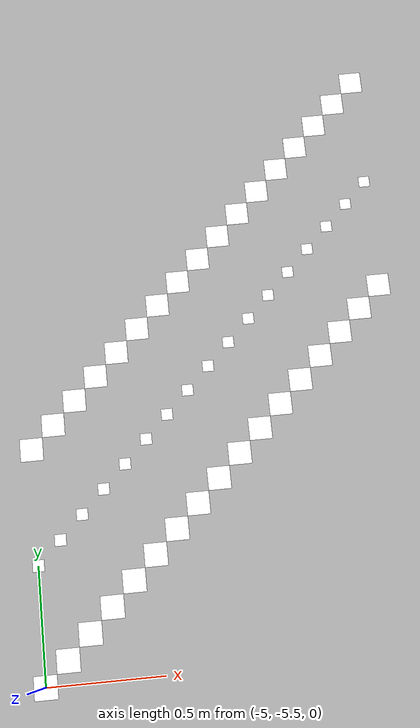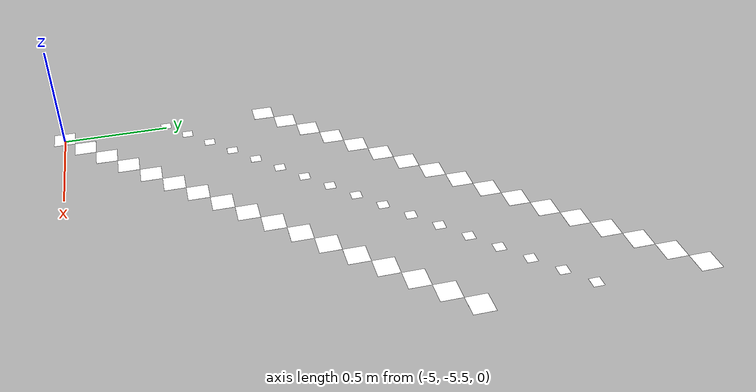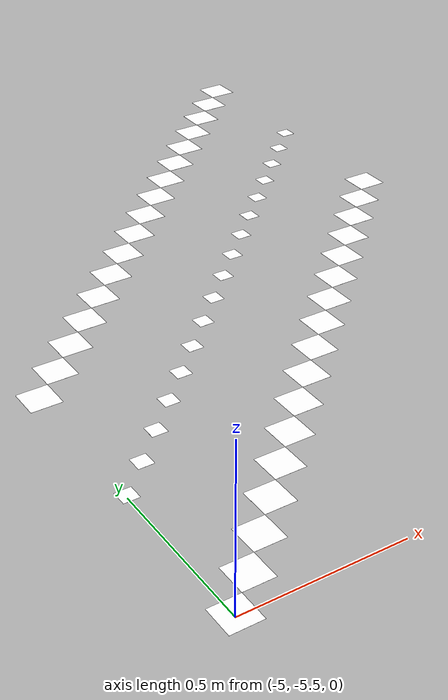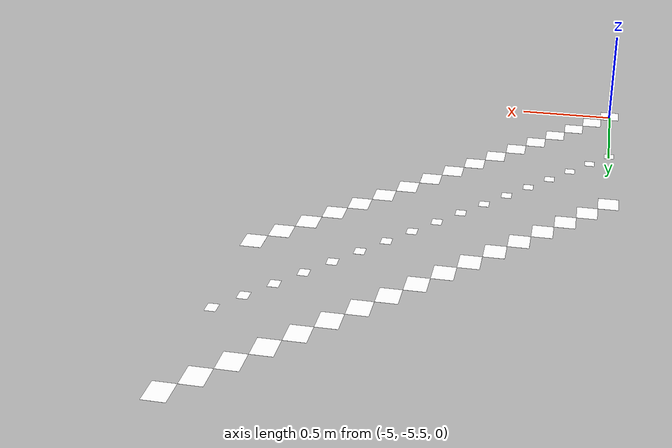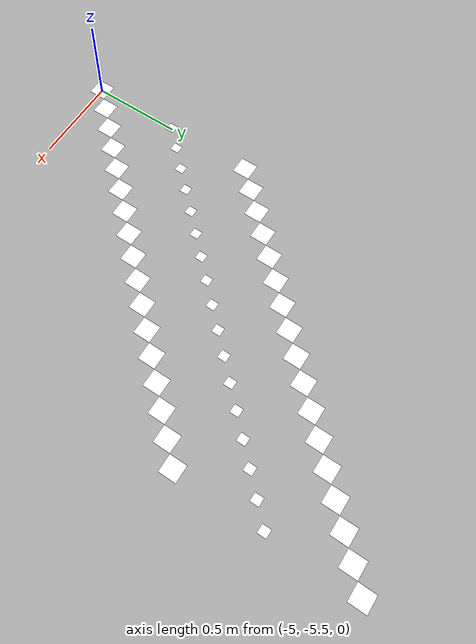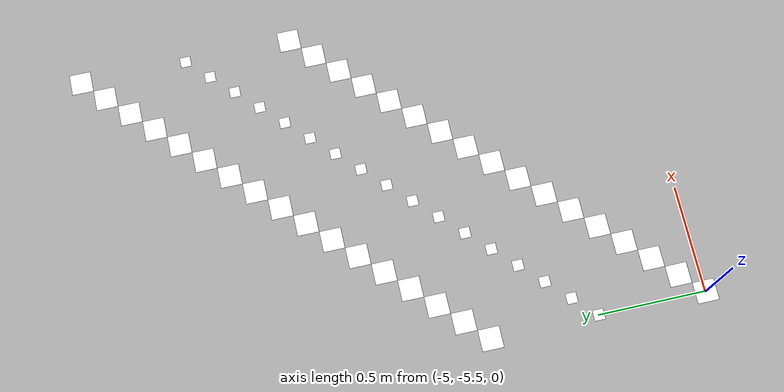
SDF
<sdf version="1.5">
 <model name="AutoNOMOS_mini_intersection">
  <static>true</static>
  <link name="L1_p1">
   <pose>-5 -5 0.011 0 0 0</pose>
   <visual name="visual_L1_p1">
    <cast_shadows>false</cast_shadows>
    <geometry><plane><normal>0 0 1</normal><size>.05 .05</size></plane></geometry>
    <material>
     <ambient>0 0 0 0</ambient>
     <diffuse>1 1 1 0</diffuse>
     <specular>0 0 0 0</specular>
     <emissive>0 0 0 0</emissive>
    </material>
   </visual>
  </link>
  <link name="L1_p-5">
   <pose>-5 -4.5 0.011 0 0 0</pose>
   <visual name="visual_L1_p-5">
    <cast_shadows>false</cast_shadows>
    <geometry><plane><normal>0 0 1</normal><size>.1 .1</size></plane></geometry>
    <material>
     <ambient>0 0 0 0</ambient>
     <diffuse>1 1 1 0</diffuse>
     <specular>0 0 0 0</specular>
     <emissive>0 0 0 0</emissive>
    </material>
   </visual>
  </link>
  <link name="L1_p-4.5">
   <pose>-5 -5.5 0.011 0 0 0</pose>
   <visual name="visual_L1_p-4.5">
    <cast_shadows>false</cast_shadows>
    <geometry><plane><normal>0 0 1</normal><size>.1 .1</size></plane></geometry>
    <material>
     <ambient>0 0 0 0</ambient>
     <diffuse>1 1 1 0</diffuse>
     <specular>0 0 0 0</specular>
     <emissive>0 0 0 0</emissive>
    </material>
   </visual>
  </link>
  <link name="L1_p2">
   <pose>-4.9 -4.9 0.011 0 0 0</pose>
   <visual name="visual_L1_p2">
    <cast_shadows>false</cast_shadows>
    <geometry><plane><normal>0 0 1</normal><size>.05 .05</size></plane></geometry>
    <material>
     <ambient>0 0 0 0</ambient>
     <diffuse>1 1 1 0</diffuse>
     <specular>0 0 0 0</specular>
     <emissive>0 0 0 0</emissive>
    </material>
   </visual>
  </link>
  <link name="L1_p-4.9">
   <pose>-4.9 -4.4 0.011 0 0 0</pose>
   <visual name="visual_L1_p-4.9">
    <cast_shadows>false</cast_shadows>
    <geometry><plane><normal>0 0 1</normal><size>.1 .1</size></plane></geometry>
    <material>
     <ambient>0 0 0 0</ambient>
     <diffuse>1 1 1 0</diffuse>
     <specular>0 0 0 0</specular>
     <emissive>0 0 0 0</emissive>
    </material>
   </visual>
  </link>
  <link name="L1_p-4.4">
   <pose>-4.9 -5.4 0.011 0 0 0</pose>
   <visual name="visual_L1_p-4.4">
    <cast_shadows>false</cast_shadows>
    <geometry><plane><normal>0 0 1</normal><size>.1 .1</size></plane></geometry>
    <material>
     <ambient>0 0 0 0</ambient>
     <diffuse>1 1 1 0</diffuse>
     <specular>0 0 0 0</specular>
     <emissive>0 0 0 0</emissive>
    </material>
   </visual>
  </link>
  <link name="L1_p3">
   <pose>-4.8 -4.8 0.011 0 0 0</pose>
   <visual name="visual_L1_p3">
    <cast_shadows>false</cast_shadows>
    <geometry><plane><normal>0 0 1</normal><size>.05 .05</size></plane></geometry>
    <material>
     <ambient>0 0 0 0</ambient>
     <diffuse>1 1 1 0</diffuse>
     <specular>0 0 0 0</specular>
     <emissive>0 0 0 0</emissive>
    </material>
   </visual>
  </link>
  <link name="L1_p-4.8">
   <pose>-4.8 -4.3 0.011 0 0 0</pose>
   <visual name="visual_L1_p-4.8">
    <cast_shadows>false</cast_shadows>
    <geometry><plane><normal>0 0 1</normal><size>.1 .1</size></plane></geometry>
    <material>
     <ambient>0 0 0 0</ambient>
     <diffuse>1 1 1 0</diffuse>
     <specular>0 0 0 0</specular>
     <emissive>0 0 0 0</emissive>
    </material>
   </visual>
  </link>
  <link name="L1_p-4.3">
   <pose>-4.8 -5.3 0.011 0 0 0</pose>
   <visual name="visual_L1_p-4.3">
    <cast_shadows>false</cast_shadows>
    <geometry><plane><normal>0 0 1</normal><size>.1 .1</size></plane></geometry>
    <material>
     <ambient>0 0 0 0</ambient>
     <diffuse>1 1 1 0</diffuse>
     <specular>0 0 0 0</specular>
     <emissive>0 0 0 0</emissive>
    </material>
   </visual>
  </link>
  <link name="L1_p4">
   <pose>-4.7 -4.7 0.011 0 0 0</pose>
   <visual name="visual_L1_p4">
    <cast_shadows>false</cast_shadows>
    <geometry><plane><normal>0 0 1</normal><size>.05 .05</size></plane></geometry>
    <material>
     <ambient>0 0 0 0</ambient>
     <diffuse>1 1 1 0</diffuse>
     <specular>0 0 0 0</specular>
     <emissive>0 0 0 0</emissive>
    </material>
   </visual>
  </link>
  <link name="L1_p-4.7">
   <pose>-4.7 -4.2 0.011 0 0 0</pose>
   <visual name="visual_L1_p-4.7">
    <cast_shadows>false</cast_shadows>
    <geometry><plane><normal>0 0 1</normal><size>.1 .1</size></plane></geometry>
    <material>
     <ambient>0 0 0 0</ambient>
     <diffuse>1 1 1 0</diffuse>
     <specular>0 0 0 0</specular>
     <emissive>0 0 0 0</emissive>
    </material>
   </visual>
  </link>
  <link name="L1_p-4.2">
   <pose>-4.7 -5.2 0.011 0 0 0</pose>
   <visual name="visual_L1_p-4.2">
    <cast_shadows>false</cast_shadows>
    <geometry><plane><normal>0 0 1</normal><size>.1 .1</size></plane></geometry>
    <material>
     <ambient>0 0 0 0</ambient>
     <diffuse>1 1 1 0</diffuse>
     <specular>0 0 0 0</specular>
     <emissive>0 0 0 0</emissive>
    </material>
   </visual>
  </link>
  <link name="L1_p5">
   <pose>-4.6 -4.6 0.011 0 0 0</pose>
   <visual name="visual_L1_p5">
    <cast_shadows>false</cast_shadows>
    <geometry><plane><normal>0 0 1</normal><size>.05 .05</size></plane></geometry>
    <material>
     <ambient>0 0 0 0</ambient>
     <diffuse>1 1 1 0</diffuse>
     <specular>0 0 0 0</specular>
     <emissive>0 0 0 0</emissive>
    </material>
   </visual>
  </link>
  <link name="L1_p-4.6">
   <pose>-4.6 -4.1 0.011 0 0 0</pose>
   <visual name="visual_L1_p-4.6">
    <cast_shadows>false</cast_shadows>
    <geometry><plane><normal>0 0 1</normal><size>.1 .1</size></plane></geometry>
    <material>
     <ambient>0 0 0 0</ambient>
     <diffuse>1 1 1 0</diffuse>
     <specular>0 0 0 0</specular>
     <emissive>0 0 0 0</emissive>
    </material>
   </visual>
  </link>
  <link name="L1_p-4.1">
   <pose>-4.6 -5.1 0.011 0 0 0</pose>
   <visual name="visual_L1_p-4.1">
    <cast_shadows>false</cast_shadows>
    <geometry><plane><normal>0 0 1</normal><size>.1 .1</size></plane></geometry>
    <material>
     <ambient>0 0 0 0</ambient>
     <diffuse>1 1 1 0</diffuse>
     <specular>0 0 0 0</specular>
     <emissive>0 0 0 0</emissive>
    </material>
   </visual>
  </link>
  <link name="L1_p6">
   <pose>-4.5 -4.5 0.011 0 0 0</pose>
   <visual name="visual_L1_p6">
    <cast_shadows>false</cast_shadows>
    <geometry><plane><normal>0 0 1</normal><size>.05 .05</size></plane></geometry>
    <material>
     <ambient>0 0 0 0</ambient>
     <diffuse>1 1 1 0</diffuse>
     <specular>0 0 0 0</specular>
     <emissive>0 0 0 0</emissive>
    </material>
   </visual>
  </link>
  <link name="L1_p-4.5">
   <pose>-4.5 -4 0.011 0 0 0</pose>
   <visual name="visual_L1_p-4.5">
    <cast_shadows>false</cast_shadows>
    <geometry><plane><normal>0 0 1</normal><size>.1 .1</size></plane></geometry>
    <material>
     <ambient>0 0 0 0</ambient>
     <diffuse>1 1 1 0</diffuse>
     <specular>0 0 0 0</specular>
     <emissive>0 0 0 0</emissive>
    </material>
   </visual>
  </link>
  <link name="L1_p-4.">
   <pose>-4.5 -5 0.011 0 0 0</pose>
   <visual name="visual_L1_p-4.">
    <cast_shadows>false</cast_shadows>
    <geometry><plane><normal>0 0 1</normal><size>.1 .1</size></plane></geometry>
    <material>
     <ambient>0 0 0 0</ambient>
     <diffuse>1 1 1 0</diffuse>
     <specular>0 0 0 0</specular>
     <emissive>0 0 0 0</emissive>
    </material>
   </visual>
  </link>
  <link name="L1_p7">
   <pose>-4.4 -4.4 0.011 0 0 0</pose>
   <visual name="visual_L1_p7">
    <cast_shadows>false</cast_shadows>
    <geometry><plane><normal>0 0 1</normal><size>.05 .05</size></plane></geometry>
    <material>
     <ambient>0 0 0 0</ambient>
     <diffuse>1 1 1 0</diffuse>
     <specular>0 0 0 0</specular>
     <emissive>0 0 0 0</emissive>
    </material>
   </visual>
  </link>
  <link name="L1_p-4.4">
   <pose>-4.4 -3.9 0.011 0 0 0</pose>
   <visual name="visual_L1_p-4.4">
    <cast_shadows>false</cast_shadows>
    <geometry><plane><normal>0 0 1</normal><size>.1 .1</size></plane></geometry>
    <material>
     <ambient>0 0 0 0</ambient>
     <diffuse>1 1 1 0</diffuse>
     <specular>0 0 0 0</specular>
     <emissive>0 0 0 0</emissive>
    </material>
   </visual>
  </link>
  <link name="L1_p-3.9">
   <pose>-4.4 -4.9 0.011 0 0 0</pose>
   <visual name="visual_L1_p-3.9">
    <cast_shadows>false</cast_shadows>
    <geometry><plane><normal>0 0 1</normal><size>.1 .1</size></plane></geometry>
    <material>
     <ambient>0 0 0 0</ambient>
     <diffuse>1 1 1 0</diffuse>
     <specular>0 0 0 0</specular>
     <emissive>0 0 0 0</emissive>
    </material>
   </visual>
  </link>
  <link name="L1_p8">
   <pose>-4.3 -4.3 0.011 0 0 0</pose>
   <visual name="visual_L1_p8">
    <cast_shadows>false</cast_shadows>
    <geometry><plane><normal>0 0 1</normal><size>.05 .05</size></plane></geometry>
    <material>
     <ambient>0 0 0 0</ambient>
     <diffuse>1 1 1 0</diffuse>
     <specular>0 0 0 0</specular>
     <emissive>0 0 0 0</emissive>
    </material>
   </visual>
  </link>
  <link name="L1_p-4.3">
   <pose>-4.3 -3.8 0.011 0 0 0</pose>
   <visual name="visual_L1_p-4.3">
    <cast_shadows>false</cast_shadows>
    <geometry><plane><normal>0 0 1</normal><size>.1 .1</size></plane></geometry>
    <material>
     <ambient>0 0 0 0</ambient>
     <diffuse>1 1 1 0</diffuse>
     <specular>0 0 0 0</specular>
     <emissive>0 0 0 0</emissive>
    </material>
   </visual>
  </link>
  <link name="L1_p-3.8">
   <pose>-4.3 -4.8 0.011 0 0 0</pose>
   <visual name="visual_L1_p-3.8">
    <cast_shadows>false</cast_shadows>
    <geometry><plane><normal>0 0 1</normal><size>.1 .1</size></plane></geometry>
    <material>
     <ambient>0 0 0 0</ambient>
     <diffuse>1 1 1 0</diffuse>
     <specular>0 0 0 0</specular>
     <emissive>0 0 0 0</emissive>
    </material>
   </visual>
  </link>
  <link name="L1_p9">
   <pose>-4.2 -4.2 0.011 0 0 0</pose>
   <visual name="visual_L1_p9">
    <cast_shadows>false</cast_shadows>
    <geometry><plane><normal>0 0 1</normal><size>.05 .05</size></plane></geometry>
    <material>
     <ambient>0 0 0 0</ambient>
     <diffuse>1 1 1 0</diffuse>
     <specular>0 0 0 0</specular>
     <emissive>0 0 0 0</emissive>
    </material>
   </visual>
  </link>
  <link name="L1_p-4.2">
   <pose>-4.2 -3.7 0.011 0 0 0</pose>
   <visual name="visual_L1_p-4.2">
    <cast_shadows>false</cast_shadows>
    <geometry><plane><normal>0 0 1</normal><size>.1 .1</size></plane></geometry>
    <material>
     <ambient>0 0 0 0</ambient>
     <diffuse>1 1 1 0</diffuse>
     <specular>0 0 0 0</specular>
     <emissive>0 0 0 0</emissive>
    </material>
   </visual>
  </link>
  <link name="L1_p-3.7">
   <pose>-4.2 -4.7 0.011 0 0 0</pose>
   <visual name="visual_L1_p-3.7">
    <cast_shadows>false</cast_shadows>
    <geometry><plane><normal>0 0 1</normal><size>.1 .1</size></plane></geometry>
    <material>
     <ambient>0 0 0 0</ambient>
     <diffuse>1 1 1 0</diffuse>
     <specular>0 0 0 0</specular>
     <emissive>0 0 0 0</emissive>
    </material>
   </visual>
  </link>
  <link name="L1_p10">
   <pose>-4.1 -4.1 0.011 0 0 0</pose>
   <visual name="visual_L1_p10">
    <cast_shadows>false</cast_shadows>
    <geometry><plane><normal>0 0 1</normal><size>.05 .05</size></plane></geometry>
    <material>
     <ambient>0 0 0 0</ambient>
     <diffuse>1 1 1 0</diffuse>
     <specular>0 0 0 0</specular>
     <emissive>0 0 0 0</emissive>
    </material>
   </visual>
  </link>
  <link name="L1_p-4.1">
   <pose>-4.1 -3.6 0.011 0 0 0</pose>
   <visual name="visual_L1_p-4.1">
    <cast_shadows>false</cast_shadows>
    <geometry><plane><normal>0 0 1</normal><size>.1 .1</size></plane></geometry>
    <material>
     <ambient>0 0 0 0</ambient>
     <diffuse>1 1 1 0</diffuse>
     <specular>0 0 0 0</specular>
     <emissive>0 0 0 0</emissive>
    </material>
   </visual>
  </link>
  <link name="L1_p-3.6">
   <pose>-4.1 -4.6 0.011 0 0 0</pose>
   <visual name="visual_L1_p-3.6">
    <cast_shadows>false</cast_shadows>
    <geometry><plane><normal>0 0 1</normal><size>.1 .1</size></plane></geometry>
    <material>
     <ambient>0 0 0 0</ambient>
     <diffuse>1 1 1 0</diffuse>
     <specular>0 0 0 0</specular>
     <emissive>0 0 0 0</emissive>
    </material>
   </visual>
  </link>
  <link name="L1_p11">
   <pose>-4 -4 0.011 0 0 0</pose>
   <visual name="visual_L1_p11">
    <cast_shadows>false</cast_shadows>
    <geometry><plane><normal>0 0 1</normal><size>.05 .05</size></plane></geometry>
    <material>
     <ambient>0 0 0 0</ambient>
     <diffuse>1 1 1 0</diffuse>
     <specular>0 0 0 0</specular>
     <emissive>0 0 0 0</emissive>
    </material>
   </visual>
  </link>
  <link name="L1_p-4.">
   <pose>-4 -3.5 0.011 0 0 0</pose>
   <visual name="visual_L1_p-4.">
    <cast_shadows>false</cast_shadows>
    <geometry><plane><normal>0 0 1</normal><size>.1 .1</size></plane></geometry>
    <material>
     <ambient>0 0 0 0</ambient>
     <diffuse>1 1 1 0</diffuse>
     <specular>0 0 0 0</specular>
     <emissive>0 0 0 0</emissive>
    </material>
   </visual>
  </link>
  <link name="L1_p-3.5">
   <pose>-4 -4.5 0.011 0 0 0</pose>
   <visual name="visual_L1_p-3.5">
    <cast_shadows>false</cast_shadows>
    <geometry><plane><normal>0 0 1</normal><size>.1 .1</size></plane></geometry>
    <material>
     <ambient>0 0 0 0</ambient>
     <diffuse>1 1 1 0</diffuse>
     <specular>0 0 0 0</specular>
     <emissive>0 0 0 0</emissive>
    </material>
   </visual>
  </link>
  <link name="L1_p12">
   <pose>-3.9 -3.9 0.011 0 0 0</pose>
   <visual name="visual_L1_p12">
    <cast_shadows>false</cast_shadows>
    <geometry><plane><normal>0 0 1</normal><size>.05 .05</size></plane></geometry>
    <material>
     <ambient>0 0 0 0</ambient>
     <diffuse>1 1 1 0</diffuse>
     <specular>0 0 0 0</specular>
     <emissive>0 0 0 0</emissive>
    </material>
   </visual>
  </link>
  <link name="L1_p-3.9">
   <pose>-3.9 -3.4 0.011 0 0 0</pose>
   <visual name="visual_L1_p-3.9">
    <cast_shadows>false</cast_shadows>
    <geometry><plane><normal>0 0 1</normal><size>.1 .1</size></plane></geometry>
    <material>
     <ambient>0 0 0 0</ambient>
     <diffuse>1 1 1 0</diffuse>
     <specular>0 0 0 0</specular>
     <emissive>0 0 0 0</emissive>
    </material>
   </visual>
  </link>
  <link name="L1_p-3.4">
   <pose>-3.9 -4.4 0.011 0 0 0</pose>
   <visual name="visual_L1_p-3.4">
    <cast_shadows>false</cast_shadows>
    <geometry><plane><normal>0 0 1</normal><size>.1 .1</size></plane></geometry>
    <material>
     <ambient>0 0 0 0</ambient>
     <diffuse>1 1 1 0</diffuse>
     <specular>0 0 0 0</specular>
     <emissive>0 0 0 0</emissive>
    </material>
   </visual>
  </link>
  <link name="L1_p13">
   <pose>-3.8 -3.8 0.011 0 0 0</pose>
   <visual name="visual_L1_p13">
    <cast_shadows>false</cast_shadows>
    <geometry><plane><normal>0 0 1</normal><size>.05 .05</size></plane></geometry>
    <material>
     <ambient>0 0 0 0</ambient>
     <diffuse>1 1 1 0</diffuse>
     <specular>0 0 0 0</specular>
     <emissive>0 0 0 0</emissive>
    </material>
   </visual>
  </link>
  <link name="L1_p-3.8">
   <pose>-3.8 -3.3 0.011 0 0 0</pose>
   <visual name="visual_L1_p-3.8">
    <cast_shadows>false</cast_shadows>
    <geometry><plane><normal>0 0 1</normal><size>.1 .1</size></plane></geometry>
    <material>
     <ambient>0 0 0 0</ambient>
     <diffuse>1 1 1 0</diffuse>
     <specular>0 0 0 0</specular>
     <emissive>0 0 0 0</emissive>
    </material>
   </visual>
  </link>
  <link name="L1_p-3.3">
   <pose>-3.8 -4.3 0.011 0 0 0</pose>
   <visual name="visual_L1_p-3.3">
    <cast_shadows>false</cast_shadows>
    <geometry><plane><normal>0 0 1</normal><size>.1 .1</size></plane></geometry>
    <material>
     <ambient>0 0 0 0</ambient>
     <diffuse>1 1 1 0</diffuse>
     <specular>0 0 0 0</specular>
     <emissive>0 0 0 0</emissive>
    </material>
   </visual>
  </link>
  <link name="L1_p14">
   <pose>-3.7 -3.7 0.011 0 0 0</pose>
   <visual name="visual_L1_p14">
    <cast_shadows>false</cast_shadows>
    <geometry><plane><normal>0 0 1</normal><size>.05 .05</size></plane></geometry>
    <material>
     <ambient>0 0 0 0</ambient>
     <diffuse>1 1 1 0</diffuse>
     <specular>0 0 0 0</specular>
     <emissive>0 0 0 0</emissive>
    </material>
   </visual>
  </link>
  <link name="L1_p-3.7">
   <pose>-3.7 -3.2 0.011 0 0 0</pose>
   <visual name="visual_L1_p-3.7">
    <cast_shadows>false</cast_shadows>
    <geometry><plane><normal>0 0 1</normal><size>.1 .1</size></plane></geometry>
    <material>
     <ambient>0 0 0 0</ambient>
     <diffuse>1 1 1 0</diffuse>
     <specular>0 0 0 0</specular>
     <emissive>0 0 0 0</emissive>
    </material>
   </visual>
  </link>
  <link name="L1_p-3.2">
   <pose>-3.7 -4.2 0.011 0 0 0</pose>
   <visual name="visual_L1_p-3.2">
    <cast_shadows>false</cast_shadows>
    <geometry><plane><normal>0 0 1</normal><size>.1 .1</size></plane></geometry>
    <material>
     <ambient>0 0 0 0</ambient>
     <diffuse>1 1 1 0</diffuse>
     <specular>0 0 0 0</specular>
     <emissive>0 0 0 0</emissive>
    </material>
   </visual>
  </link>
  <link name="L1_p15">
   <pose>-3.6 -3.6 0.011 0 0 0</pose>
   <visual name="visual_L1_p15">
    <cast_shadows>false</cast_shadows>
    <geometry><plane><normal>0 0 1</normal><size>.05 .05</size></plane></geometry>
    <material>
     <ambient>0 0 0 0</ambient>
     <diffuse>1 1 1 0</diffuse>
     <specular>0 0 0 0</specular>
     <emissive>0 0 0 0</emissive>
    </material>
   </visual>
  </link>
  <link name="L1_p-3.6">
   <pose>-3.6 -3.1 0.011 0 0 0</pose>
   <visual name="visual_L1_p-3.6">
    <cast_shadows>false</cast_shadows>
    <geometry><plane><normal>0 0 1</normal><size>.1 .1</size></plane></geometry>
    <material>
     <ambient>0 0 0 0</ambient>
     <diffuse>1 1 1 0</diffuse>
     <specular>0 0 0 0</specular>
     <emissive>0 0 0 0</emissive>
    </material>
   </visual>
  </link>
  <link name="L1_p-3.1">
   <pose>-3.6 -4.1 0.011 0 0 0</pose>
   <visual name="visual_L1_p-3.1">
    <cast_shadows>false</cast_shadows>
    <geometry><plane><normal>0 0 1</normal><size>.1 .1</size></plane></geometry>
    <material>
     <ambient>0 0 0 0</ambient>
     <diffuse>1 1 1 0</diffuse>
     <specular>0 0 0 0</specular>
     <emissive>0 0 0 0</emissive>
    </material>
   </visual>
  </link>
  <link name="L1_p16">
   <pose>-3.5 -3.5 0.011 0 0 0</pose>
   <visual name="visual_L1_p16">
    <cast_shadows>false</cast_shadows>
    <geometry><plane><normal>0 0 1</normal><size>.05 .05</size></plane></geometry>
    <material>
     <ambient>0 0 0 0</ambient>
     <diffuse>1 1 1 0</diffuse>
     <specular>0 0 0 0</specular>
     <emissive>0 0 0 0</emissive>
    </material>
   </visual>
  </link>
  <link name="L1_p-3.5">
   <pose>-3.5 -3 0.011 0 0 0</pose>
   <visual name="visual_L1_p-3.5">
    <cast_shadows>false</cast_shadows>
    <geometry><plane><normal>0 0 1</normal><size>.1 .1</size></plane></geometry>
    <material>
     <ambient>0 0 0 0</ambient>
     <diffuse>1 1 1 0</diffuse>
     <specular>0 0 0 0</specular>
     <emissive>0 0 0 0</emissive>
    </material>
   </visual>
  </link>
  <link name="L1_p-3.">
   <pose>-3.5 -4 0.011 0 0 0</pose>
   <visual name="visual_L1_p-3.">
    <cast_shadows>false</cast_shadows>
    <geometry><plane><normal>0 0 1</normal><size>.1 .1</size></plane></geometry>
    <material>
     <ambient>0 0 0 0</ambient>
     <diffuse>1 1 1 0</diffuse>
     <specular>0 0 0 0</specular>
     <emissive>0 0 0 0</emissive>
    </material>
   </visual>
  </link>
  <link name="L1_p17">
   <pose>-3.4 -3.4 0.011 0 0 0</pose>
   <visual name="visual_L1_p17">
    <cast_shadows>false</cast_shadows>
    <geometry><plane><normal>0 0 1</normal><size>.05 .05</size></plane></geometry>
    <material>
     <ambient>0 0 0 0</ambient>
     <diffuse>1 1 1 0</diffuse>
     <specular>0 0 0 0</specular>
     <emissive>0 0 0 0</emissive>
    </material>
   </visual>
  </link>
  <link name="L1_p-3.4">
   <pose>-3.4 -2.9 0.011 0 0 0</pose>
   <visual name="visual_L1_p-3.4">
    <cast_shadows>false</cast_shadows>
    <geometry><plane><normal>0 0 1</normal><size>.1 .1</size></plane></geometry>
    <material>
     <ambient>0 0 0 0</ambient>
     <diffuse>1 1 1 0</diffuse>
     <specular>0 0 0 0</specular>
     <emissive>0 0 0 0</emissive>
    </material>
   </visual>
  </link>
  <link name="L1_p-2.9">
   <pose>-3.4 -3.9 0.011 0 0 0</pose>
   <visual name="visual_L1_p-2.9">
    <cast_shadows>false</cast_shadows>
    <geometry><plane><normal>0 0 1</normal><size>.1 .1</size></plane></geometry>
    <material>
     <ambient>0 0 0 0</ambient>
     <diffuse>1 1 1 0</diffuse>
     <specular>0 0 0 0</specular>
     <emissive>0 0 0 0</emissive>
    </material>
   </visual>
  </link>
 </model>
</sdf>
